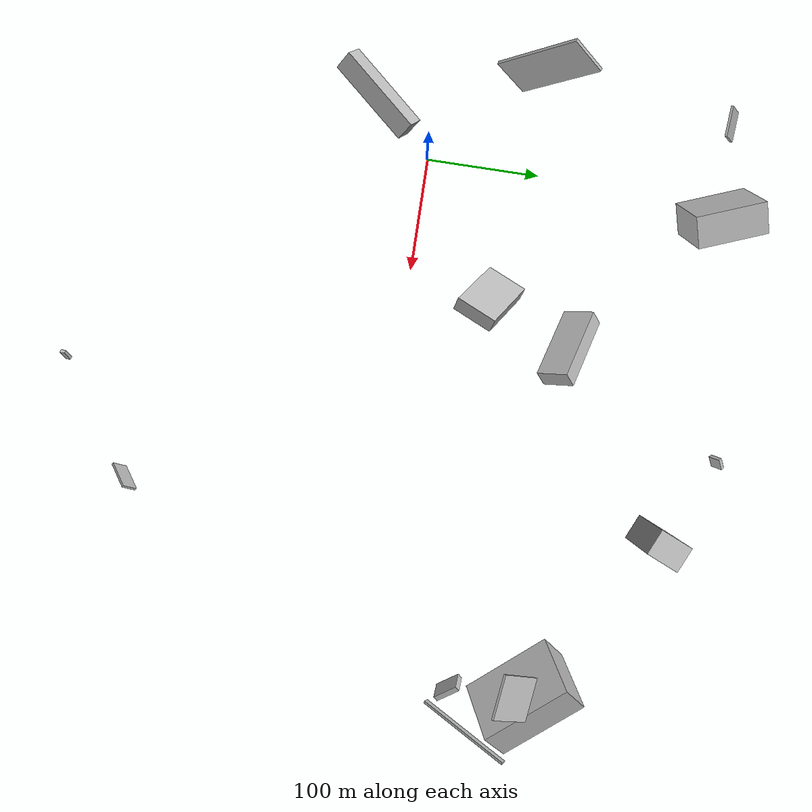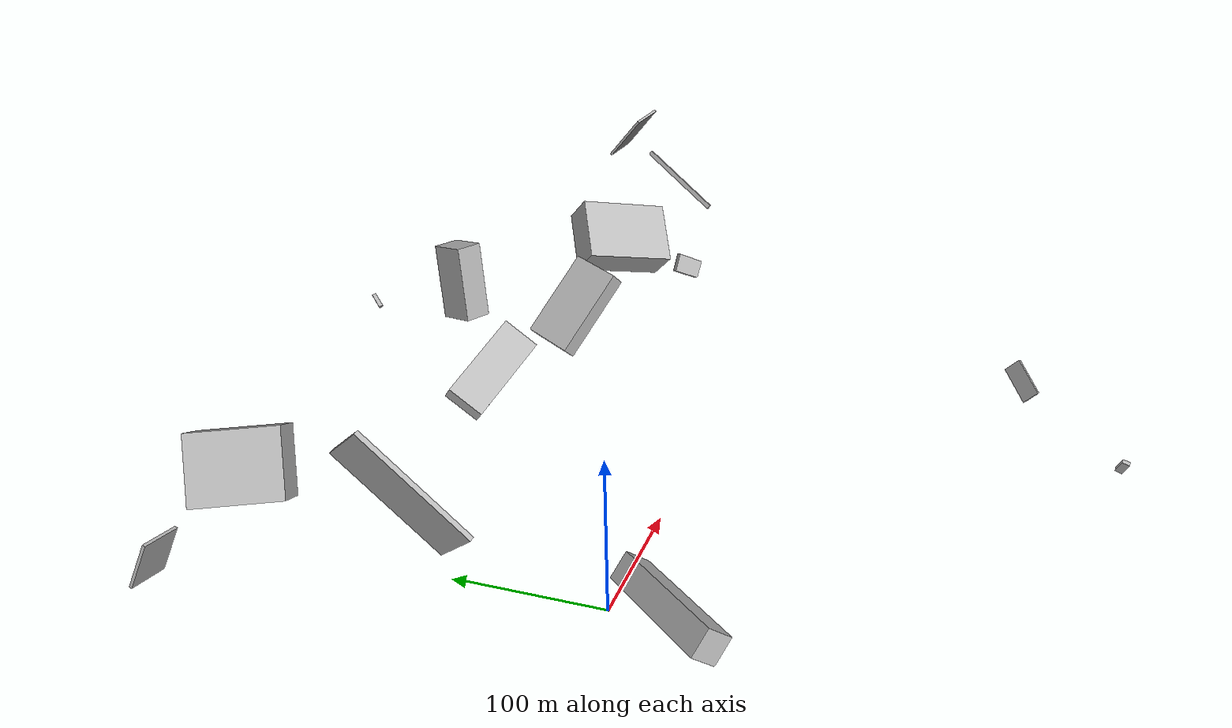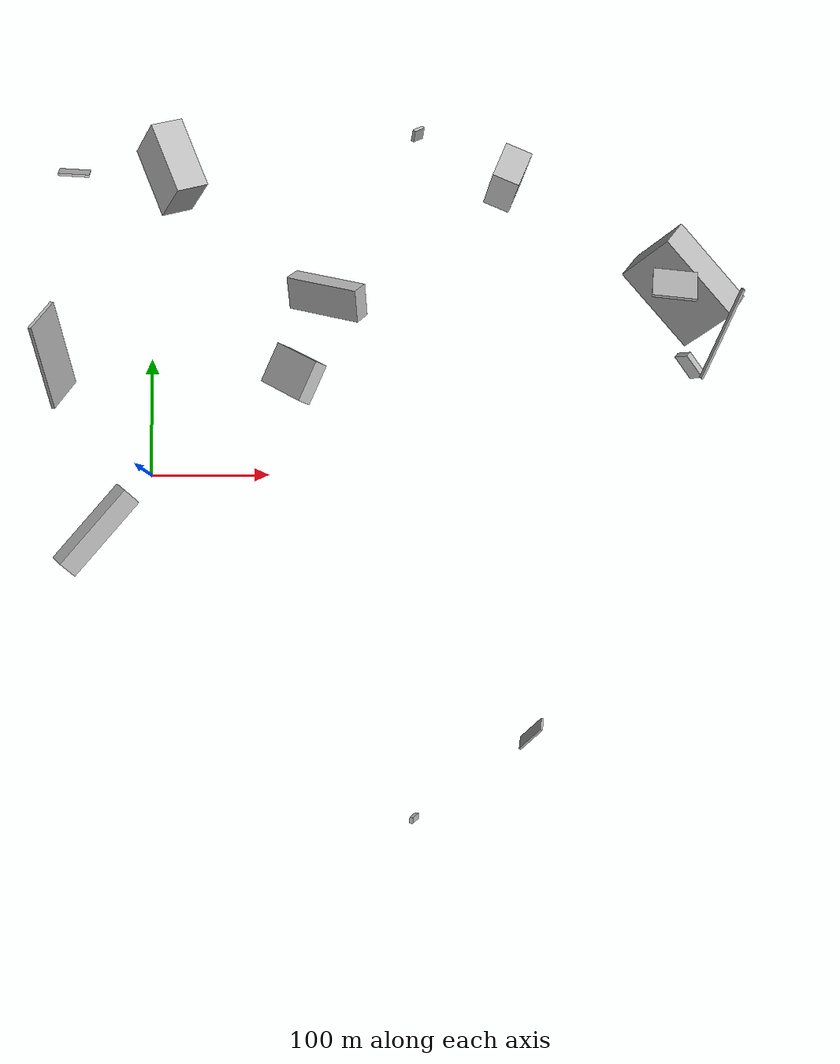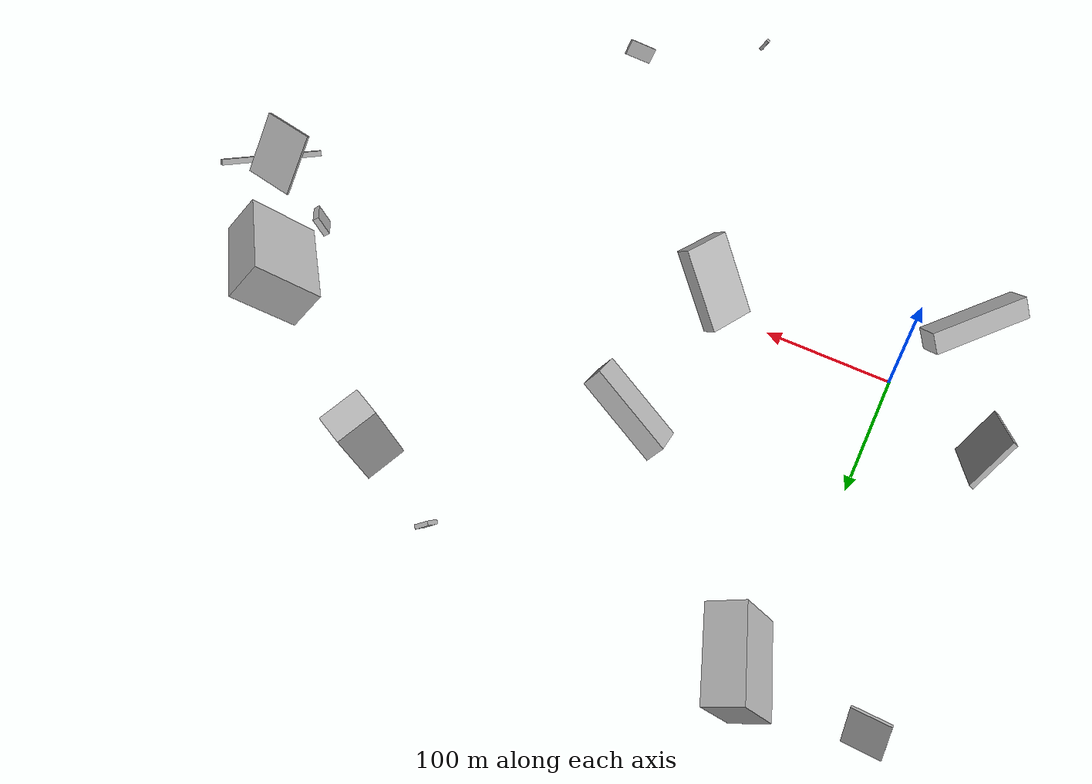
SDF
<sdf version="1.6">
 <world name="default">
  <scene>
   <sky><clouds><speed>12</speed></clouds></sky>
   <ambient>0.4 0.4 0.4 1</ambient>
   <background>0.7 0.7 0.7 1</background>
   <shadows>1</shadows>
  </scene>
  <gravity>0 0 -9.8066</gravity>
  <magnetic_field>6e-06 2.3e-05 -4.2e-05</magnetic_field>
  <physics default="0" name="default_physics" type="ode">
   <ode>
    <solver>
     <type>quick</type>
     <iters>10</iters>
     <sor>1.0</sor>
     <use_dynamic_moi_rescaling>0</use_dynamic_moi_rescaling>
    </solver>
    <constraints>
     <cfm>0</cfm>
     <erp>0.2</erp>
     <contact_max_correcting_vel>100</contact_max_correcting_vel>
     <contact_surface_layer>0.001</contact_surface_layer>
    </constraints>
   </ode>
   <max_step_size>0.004</max_step_size>
   <real_time_factor>1</real_time_factor>
   <real_time_update_rate>250</real_time_update_rate>
  </physics>
  <light name="sun" type="directional">
   <pose>0 0 10 0 0 0</pose>
   <diffuse>0.8 0.8 0.8 1</diffuse>
   <specular>0.2 0.2 0.2 1</specular>
   <attenuation>
    <range>1000</range>
    <constant>0.9</constant>
    <linear>0.01</linear>
    <quadratic>0.001</quadratic>
   </attenuation>
   <direction>-0.5 0.1 -0.9</direction>
  </light>
  <model name="building_1">
   <static>0</static>
   <pose>308.27109771176674 254.27229592811022 60.00001739745363 -0.20447335133453803 1.4324283248993999 -2.180651553721173</pose>
   <link name="link">
    <gravity>0</gravity>
    <pose>0 0 15.0 0 0 0</pose>
    <collision name="collision"><geometry><box><size>62 23 30</size></box></geometry></collision>
    <visual name="visual">
     <cast_shadows>0</cast_shadows>
     <geometry><box><size>62 23 30</size></box></geometry>
     <material>
      <script>
       <uri>model://HANNAS_wall/materials/scripts</uri>
       <uri>model://HANNAS_wall/materials/textures</uri>
       <name>vrc/HANNAS_wall</name>
      </script>
     </material>
    </visual>
   </link>
  </model>
  <model name="building_2">
   <static>0</static>
   <pose>430.7741205150739 140.14029218944725 41.43424608982828 0.7241758802830912 -0.1985692754658116 2.3111991915317187</pose>
   <link name="link">
    <gravity>0</gravity>
    <pose>0 0 27.0 0 0 0</pose>
    <collision name="collision"><geometry><box><size>80 33 54</size></box></geometry></collision>
    <visual name="visual">
     <cast_shadows>0</cast_shadows>
     <geometry><box><size>80 33 54</size></box></geometry>
     <material>
      <script>
       <uri>model://HANNAS_wall/materials/scripts</uri>
       <uri>model://HANNAS_wall/materials/textures</uri>
       <name>vrc/HANNAS_wall</name>
      </script>
     </material>
    </visual>
   </link>
  </model>
  <model name="building_3">
   <static>0</static>
   <pose>123.63967179531318 151.08248148449206 47.49542138927866 0.971322294391749 -0.6379829104613977 1.6464495928937186</pose>
   <link name="link">
    <gravity>0</gravity>
    <pose>0 0 33.5 0 0 0</pose>
    <collision name="collision"><geometry><box><size>28 15 67</size></box></geometry></collision>
    <visual name="visual">
     <cast_shadows>0</cast_shadows>
     <geometry><box><size>28 15 67</size></box></geometry>
     <material>
      <script>
       <uri>model://HANNAS_wall/materials/scripts</uri>
       <uri>model://HANNAS_wall/materials/textures</uri>
       <name>vrc/HANNAS_wall</name>
      </script>
     </material>
    </visual>
   </link>
  </model>
  <model name="building_4">
   <static>0</static>
   <pose>456.4673840822909 88.11672725127853 36.48455487267276 1.235938524074279 0.43885582290599356 -0.8734364952860442</pose>
   <link name="link">
    <gravity>0</gravity>
    <pose>0 0 2.5 0 0 0</pose>
    <collision name="collision"><geometry><box><size>24 16 5</size></box></geometry></collision>
    <visual name="visual">
     <cast_shadows>0</cast_shadows>
     <geometry><box><size>24 16 5</size></box></geometry>
     <material>
      <script>
       <uri>model://HANNAS_wall/materials/scripts</uri>
       <uri>model://HANNAS_wall/materials/textures</uri>
       <name>vrc/HANNAS_wall</name>
      </script>
     </material>
    </visual>
   </link>
  </model>
  <model name="building_5">
   <static>0</static>
   <pose>31.766336880252165 229.4400542316306 40.762104747713856 1.6374840560626989 -0.44065999892561997 -2.793246731935485</pose>
   <link name="link">
    <gravity>0</gravity>
    <pose>0 0 31.0 0 0 0</pose>
    <collision name="collision"><geometry><box><size>28 48 62</size></box></geometry></collision>
    <visual name="visual">
     <cast_shadows>0</cast_shadows>
     <geometry><box><size>28 48 62</size></box></geometry>
     <material>
      <script>
       <uri>model://HANNAS_wall/materials/scripts</uri>
       <uri>model://HANNAS_wall/materials/textures</uri>
       <name>vrc/HANNAS_wall</name>
      </script>
     </material>
    </visual>
   </link>
  </model>
  <model name="building_6">
   <static>0</static>
   <pose>-62.06989637674201 59.39622991550061 73.28770425774142 0.7157787225821816 0.32701191746578007 2.9398685427799105</pose>
   <link name="link">
    <gravity>0</gravity>
    <pose>0 0 40.0 0 0 0</pose>
    <collision name="collision"><geometry><box><size>3 36 80</size></box></geometry></collision>
    <visual name="visual">
     <cast_shadows>0</cast_shadows>
     <geometry><box><size>3 36 80</size></box></geometry>
     <material>
      <script>
       <uri>model://HANNAS_wall/materials/scripts</uri>
       <uri>model://HANNAS_wall/materials/textures</uri>
       <name>vrc/HANNAS_wall</name>
      </script>
     </material>
    </visual>
   </link>
  </model>
  <model name="building_7">
   <static>0</static>
   <pose>144.22554885769534 55.50988830217307 152.2091407523401 2.403212626499997 0.16063501084570803 -2.0043858393665794</pose>
   <link name="link">
    <gravity>0</gravity>
    <pose>0 0 28.5 0 0 0</pose>
    <collision name="collision"><geometry><box><size>33 11 57</size></box></geometry></collision>
    <visual name="visual">
     <cast_shadows>0</cast_shadows>
     <geometry><box><size>33 11 57</size></box></geometry>
     <material>
      <script>
       <uri>model://HANNAS_wall/materials/scripts</uri>
       <uri>model://HANNAS_wall/materials/textures</uri>
       <name>vrc/HANNAS_wall</name>
      </script>
     </material>
    </visual>
   </link>
  </model>
  <model name="building_8">
   <static>0</static>
   <pose>453.54839741624966 66.19203577800096 97.07726247180042 -1.0354200095307358 0.36778344628438514 -0.2003489738961053</pose>
   <link name="link">
    <gravity>0</gravity>
    <pose>0 0 40.0 0 0 0</pose>
    <collision name="collision"><geometry><box><size>2 4 80</size></box></geometry></collision>
    <visual name="visual">
     <cast_shadows>0</cast_shadows>
     <geometry><box><size>2 4 80</size></box></geometry>
     <material>
      <script>
       <uri>model://HANNAS_wall/materials/scripts</uri>
       <uri>model://HANNAS_wall/materials/textures</uri>
       <name>vrc/HANNAS_wall</name>
      </script>
     </material>
    </visual>
   </link>
  </model>
  <model name="building_9">
   <static>0</static>
   <pose>229.046036796972 276.0885579158277 68.6989116618835 -2.0072665442441644 0.4847294994909297 0.5343042044947138</pose>
   <link name="link">
    <gravity>0</gravity>
    <pose>0 0 1.5 0 0 0</pose>
    <collision name="collision"><geometry><box><size>10 11 3</size></box></geometry></collision>
    <visual name="visual">
     <cast_shadows>0</cast_shadows>
     <geometry><box><size>10 11 3</size></box></geometry>
     <material>
      <script>
       <uri>model://HANNAS_wall/materials/scripts</uri>
       <uri>model://HANNAS_wall/materials/textures</uri>
       <name>vrc/HANNAS_wall</name>
      </script>
     </material>
    </visual>
   </link>
  </model>
  <model name="building_10">
   <static>0</static>
   <pose>221.0952353151718 -288.8120727145857 21.526553380615432 -0.8887775917413708 1.0206791231914407 0.5851366213472703</pose>
   <link name="link">
    <gravity>0</gravity>
    <pose>0 0 2.5 0 0 0</pose>
    <collision name="collision"><geometry><box><size>11 3 5</size></box></geometry></collision>
    <visual name="visual">
     <cast_shadows>0</cast_shadows>
     <geometry><box><size>11 3 5</size></box></geometry>
     <material>
      <script>
       <uri>model://HANNAS_wall/materials/scripts</uri>
       <uri>model://HANNAS_wall/materials/textures</uri>
       <name>vrc/HANNAS_wall</name>
      </script>
     </material>
    </visual>
   </link>
  </model>
  <model name="building_11">
   <static>0</static>
   <pose>-34.32333404374079 -53.481360969354476 38.31698738127507 0.049971754073450975 0.889505233637958 2.475660518728971</pose>
   <link name="link">
    <gravity>0</gravity>
    <pose>0 0 9.0 0 0 0</pose>
    <collision name="collision"><geometry><box><size>17 80 18</size></box></geometry></collision>
    <visual name="visual">
     <cast_shadows>0</cast_shadows>
     <geometry><box><size>17 80 18</size></box></geometry>
     <material>
      <script>
       <uri>model://HANNAS_wall/materials/scripts</uri>
       <uri>model://HANNAS_wall/materials/textures</uri>
       <name>vrc/HANNAS_wall</name>
      </script>
     </material>
    </visual>
   </link>
  </model>
  <model name="building_12">
   <static>0</static>
   <pose>-51.60433227932708 257.5894481384828 23.54553270395376 -1.4219372439735387 -0.39272779637110455 1.4805020000735423</pose>
   <link name="link">
    <gravity>0</gravity>
    <pose>0 0 13.0 0 0 0</pose>
    <collision name="collision"><geometry><box><size>2 32 26</size></box></geometry></collision>
    <visual name="visual">
     <cast_shadows>0</cast_shadows>
     <geometry><box><size>2 32 26</size></box></geometry>
     <material>
      <script>
       <uri>model://HANNAS_wall/materials/scripts</uri>
       <uri>model://HANNAS_wall/materials/textures</uri>
       <name>vrc/HANNAS_wall</name>
      </script>
     </material>
    </visual>
   </link>
  </model>
  <model name="building_13">
   <static>0</static>
   <pose>317.05707605036537 -222.84272851647594 34.36243533663612 -2.7581842161317303 -0.6533788425131423 0.7722670917358266</pose>
   <link name="link">
    <gravity>0</gravity>
    <pose>0 0 7.0 0 0 0</pose>
    <collision name="collision"><geometry><box><size>29 2 14</size></box></geometry></collision>
    <visual name="visual">
     <cast_shadows>0</cast_shadows>
     <geometry><box><size>29 2 14</size></box></geometry>
     <material>
      <script>
       <uri>model://HANNAS_wall/materials/scripts</uri>
       <uri>model://HANNAS_wall/materials/textures</uri>
       <name>vrc/HANNAS_wall</name>
      </script>
     </material>
    </visual>
   </link>
  </model>
  <model name="building_14">
   <static>0</static>
   <pose>405.892842006933 129.84434559223632 167.54280084998106 -1.4644190132642216 0.7131934291277208 -1.6324641885401354</pose>
   <link name="link">
    <gravity>0</gravity>
    <pose>0 0 17.0 0 0 0</pose>
    <collision name="collision"><geometry><box><size>2 43 34</size></box></geometry></collision>
    <visual name="visual">
     <cast_shadows>0</cast_shadows>
     <geometry><box><size>2 43 34</size></box></geometry>
     <material>
      <script>
       <uri>model://HANNAS_wall/materials/scripts</uri>
       <uri>model://HANNAS_wall/materials/textures</uri>
       <name>vrc/HANNAS_wall</name>
      </script>
     </material>
    </visual>
   </link>
  </model>
 </world>
</sdf>
